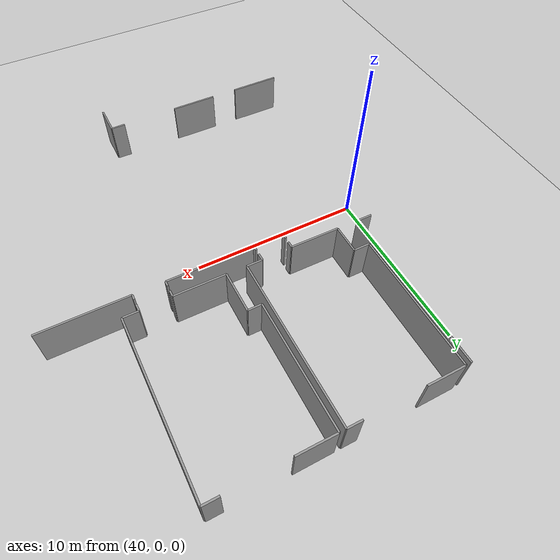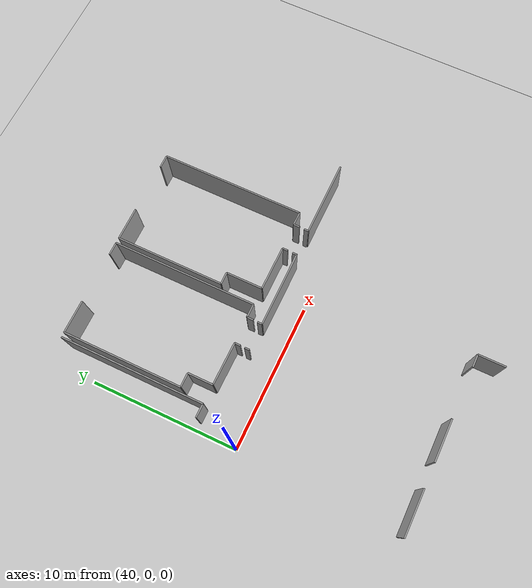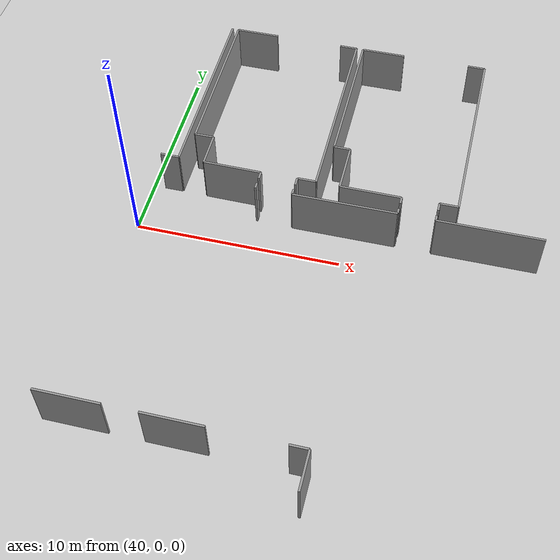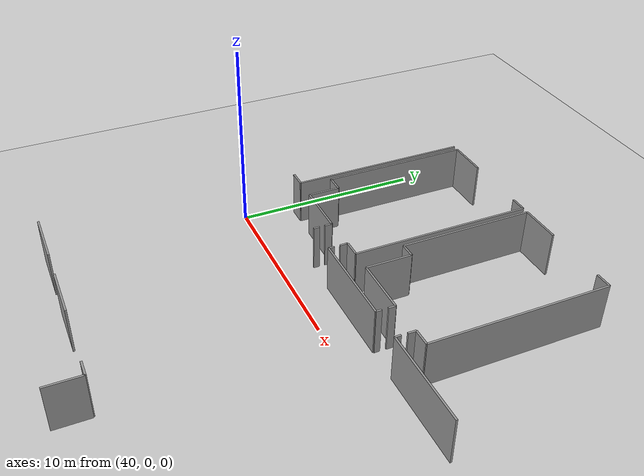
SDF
<sdf version="1.6">
 <world name="default">
  <model name="ground_plane">
   <static>1</static>
   <link name="link">
    <collision name="collision">
     <geometry><plane><normal>0 0 1</normal><size>100 100</size></plane></geometry>
     <surface><friction><ode><mu>100</mu><mu2>50</mu2></ode></friction></surface>
    </collision>
    <visual name="visual">
     <cast_shadows>0</cast_shadows>
     <geometry><plane><normal>0 0 1</normal><size>100 100</size></plane></geometry>
     <material>
      <script><uri>file://media/materials/scripts/gazebo.material</uri><name>Gazebo/Grey</name></script>
     </material>
    </visual>
   </link>
  </model>
  <model name="0510032198_A_40_1_106">
   <static>1</static>
   <link name="Wall_150">
    <collision name="Wall_150_Collision">
     <geometry><box><size>9.63523866394 0.1 2.5</size></box></geometry>
     <pose>4.81761933197 0 1.25 0 0 0</pose>
    </collision>
    <visual name="Wall_150_Visual">
     <pose>4.81761933197 0 1.25 0 0 0</pose>
     <geometry><box><size>9.63523866394 0.1 2.5</size></box></geometry>
     <material>
      <script><uri>file://media/materials/scripts/gazebo.material</uri><name>Gazebo/Grey</name></script>
      <ambient>1 1 1 1</ambient>
     </material>
    </visual>
    <pose>109.035307271 -0.307588712854 0 0 0 -1.57079632679</pose>
   </link>
   <link name="Wall_151">
    <collision name="Wall_151_Collision">
     <geometry><box><size>0.910188161456 0.1 2.5</size></box></geometry>
     <pose>0.455094080728 0 1.25 0 0 0</pose>
    </collision>
    <visual name="Wall_151_Visual">
     <pose>0.455094080728 0 1.25 0 0 0</pose>
     <geometry><box><size>0.910188161456 0.1 2.5</size></box></geometry>
     <material>
      <script><uri>file://media/materials/scripts/gazebo.material</uri><name>Gazebo/Grey</name></script>
      <ambient>1 1 1 1</ambient>
     </material>
    </visual>
    <pose>109.035307271 -9.94282737679 0 0 0 3.14159265359</pose>
   </link>
   <link name="Wall_155">
    <collision name="Wall_155_Collision">
     <geometry><box><size>1.68023987092 0.1 2.5</size></box></geometry>
     <pose>0.840119935458 0 1.25 0 0 0</pose>
    </collision>
    <visual name="Wall_155_Visual">
     <pose>0.840119935458 0 1.25 0 0 0</pose>
     <geometry><box><size>1.68023987092 0.1 2.5</size></box></geometry>
     <material>
      <script><uri>file://media/materials/scripts/gazebo.material</uri><name>Gazebo/Grey</name></script>
      <ambient>1 1 1 1</ambient>
     </material>
    </visual>
    <pose>110.3017444 -9.96658577799 0 0 0 1.57079632679</pose>
   </link>
   <link name="Wall_156">
    <collision name="Wall_156_Collision">
     <geometry><box><size>0.941442528809 0.1 2.5</size></box></geometry>
     <pose>0.470721264404 0 1.25 0 0 0</pose>
    </collision>
    <visual name="Wall_156_Visual">
     <pose>0.470721264404 0 1.25 0 0 0</pose>
     <geometry><box><size>0.941442528809 0.1 2.5</size></box></geometry>
     <material>
      <script><uri>file://media/materials/scripts/gazebo.material</uri><name>Gazebo/Grey</name></script>
      <ambient>1 1 1 1</ambient>
     </material>
    </visual>
    <pose>110.3017444 -8.28634590708 0 0 0 3.14159265359</pose>
   </link>
   <link name="Wall_157">
    <collision name="Wall_157_Collision">
     <geometry><box><size>7.96706856903 0.1 2.5</size></box></geometry>
     <pose>3.98353428452 0 1.25 0 0 0</pose>
    </collision>
    <visual name="Wall_157_Visual">
     <pose>3.98353428452 0 1.25 0 0 0</pose>
     <geometry><box><size>7.96706856903 0.1 2.5</size></box></geometry>
     <material>
      <script><uri>file://media/materials/scripts/gazebo.material</uri><name>Gazebo/Grey</name></script>
      <ambient>1 1 1 1</ambient>
     </material>
    </visual>
    <pose>109.360301871 -8.28634590708 0 0 0 1.57079632679</pose>
   </link>
   <link name="Wall_158">
    <collision name="Wall_158_Collision">
     <geometry><box><size>2.19796973662 0.1 2.5</size></box></geometry>
     <pose>1.09898486831 0 1.25 0 0 0</pose>
    </collision>
    <visual name="Wall_158_Visual">
     <pose>1.09898486831 0 1.25 0 0 0</pose>
     <geometry><box><size>2.19796973662 0.1 2.5</size></box></geometry>
     <material>
      <script><uri>file://media/materials/scripts/gazebo.material</uri><name>Gazebo/Grey</name></script>
      <ambient>1 1 1 1</ambient>
     </material>
    </visual>
    <pose>109.360301871 -0.319277338043 0 0 0 0.0</pose>
   </link>
   <link name="Wall_159">
    <collision name="Wall_159_Collision">
     <geometry><box><size>0.865212364533 0.1 2.5</size></box></geometry>
     <pose>0.432606182266 0 1.25 0 0 0</pose>
    </collision>
    <visual name="Wall_159_Visual">
     <pose>0.432606182266 0 1.25 0 0 0</pose>
     <geometry><box><size>0.865212364533 0.1 2.5</size></box></geometry>
     <material>
      <script><uri>file://media/materials/scripts/gazebo.material</uri><name>Gazebo/Grey</name></script>
      <ambient>1 1 1 1</ambient>
     </material>
    </visual>
    <pose>114.998793022 -0.319277338043 0 0 0 0.0</pose>
   </link>
   <link name="Wall_160">
    <collision name="Wall_160_Collision">
     <geometry><box><size>9.63320585956 0.1 2.5</size></box></geometry>
     <pose>4.81660292978 0 1.25 0 0 0</pose>
    </collision>
    <visual name="Wall_160_Visual">
     <pose>4.81660292978 0 1.25 0 0 0</pose>
     <geometry><box><size>9.63320585956 0.1 2.5</size></box></geometry>
     <material>
      <script><uri>file://media/materials/scripts/gazebo.material</uri><name>Gazebo/Grey</name></script>
      <ambient>1 1 1 1</ambient>
     </material>
    </visual>
    <pose>115.864005387 -0.319277338043 0 0 0 -1.57079632679</pose>
   </link>
   <link name="Wall_161">
    <collision name="Wall_161_Collision">
     <geometry><box><size>0.912220965836 0.1 2.5</size></box></geometry>
     <pose>0.456110482918 0 1.25 0 0 0</pose>
    </collision>
    <visual name="Wall_161_Visual">
     <pose>0.456110482918 0 1.25 0 0 0</pose>
     <geometry><box><size>0.912220965836 0.1 2.5</size></box></geometry>
     <material>
      <script><uri>file://media/materials/scripts/gazebo.material</uri><name>Gazebo/Grey</name></script>
      <ambient>1 1 1 1</ambient>
     </material>
    </visual>
    <pose>115.864005387 -9.9524831976 0 0 0 3.14159265359</pose>
   </link>
   <link name="Wall_162">
    <collision name="Wall_162_Collision">
     <geometry><box><size>0.423331512279 0.1 2.5</size></box></geometry>
     <pose>0.21166575614 0 1.25 0 0 0</pose>
    </collision>
    <visual name="Wall_162_Visual">
     <pose>0.21166575614 0 1.25 0 0 0</pose>
     <geometry><box><size>0.423331512279 0.1 2.5</size></box></geometry>
     <material>
      <script><uri>file://media/materials/scripts/gazebo.material</uri><name>Gazebo/Grey</name></script>
      <ambient>1 1 1 1</ambient>
     </material>
    </visual>
    <pose>114.951784421 -9.9524831976 0 0 0 -1.57079632679</pose>
   </link>
   <link name="Wall_163">
    <collision name="Wall_163_Collision">
     <geometry><box><size>0.382802474939 0.1 2.5</size></box></geometry>
     <pose>0.19140123747 0 1.25 0 0 0</pose>
    </collision>
    <visual name="Wall_163_Visual">
     <pose>0.19140123747 0 1.25 0 0 0</pose>
     <geometry><box><size>0.382802474939 0.1 2.5</size></box></geometry>
     <material>
      <script><uri>file://media/materials/scripts/gazebo.material</uri><name>Gazebo/Grey</name></script>
      <ambient>1 1 1 1</ambient>
     </material>
    </visual>
    <pose>113.162916566 -10.3758147099 0 0 0 1.57079632679</pose>
   </link>
   <link name="Wall_164">
    <collision name="Wall_164_Collision">
     <geometry><box><size>2.8612942037 0.1 2.5</size></box></geometry>
     <pose>1.43064710185 0 1.25 0 0 0</pose>
    </collision>
    <visual name="Wall_164_Visual">
     <pose>1.43064710185 0 1.25 0 0 0</pose>
     <geometry><box><size>2.8612942037 0.1 2.5</size></box></geometry>
     <material>
      <script><uri>file://media/materials/scripts/gazebo.material</uri><name>Gazebo/Grey</name></script>
      <ambient>1 1 1 1</ambient>
     </material>
    </visual>
    <pose>113.162916566 -9.99301223494 0 0 0 3.13235668176</pose>
   </link>
   <link name="Wall_165">
    <collision name="Wall_165_Collision">
     <geometry><box><size>2.43936525683 0.1 2.5</size></box></geometry>
     <pose>1.21968262842 0 1.25 0 0 0</pose>
    </collision>
    <visual name="Wall_165_Visual">
     <pose>1.21968262842 0 1.25 0 0 0</pose>
     <geometry><box><size>2.43936525683 0.1 2.5</size></box></geometry>
     <material>
      <script><uri>file://media/materials/scripts/gazebo.material</uri><name>Gazebo/Grey</name></script>
      <ambient>1 1 1 1</ambient>
     </material>
    </visual>
    <pose>117.020162878 -9.97713095072 0 0 0 1.57079632679</pose>
   </link>
   <link name="Wall_166">
    <collision name="Wall_166_Collision">
     <geometry><box><size>0.800416724898 0.1 2.5</size></box></geometry>
     <pose>0.400208362449 0 1.25 0 0 0</pose>
    </collision>
    <visual name="Wall_166_Visual">
     <pose>0.400208362449 0 1.25 0 0 0</pose>
     <geometry><box><size>0.800416724898 0.1 2.5</size></box></geometry>
     <material>
      <script><uri>file://media/materials/scripts/gazebo.material</uri><name>Gazebo/Grey</name></script>
      <ambient>1 1 1 1</ambient>
     </material>
    </visual>
    <pose>117.020162878 -7.53776569389 0 0 0 3.14159265359</pose>
   </link>
   <link name="Wall_167">
    <collision name="Wall_167_Collision">
     <geometry><box><size>7.21848835584 0.1 2.5</size></box></geometry>
     <pose>3.60924417792 0 1.25 0 0 0</pose>
    </collision>
    <visual name="Wall_167_Visual">
     <pose>3.60924417792 0 1.25 0 0 0</pose>
     <geometry><box><size>7.21848835584 0.1 2.5</size></box></geometry>
     <material>
      <script><uri>file://media/materials/scripts/gazebo.material</uri><name>Gazebo/Grey</name></script>
      <ambient>1 1 1 1</ambient>
     </material>
    </visual>
    <pose>116.219746154 -7.53776569389 0 0 0 1.57079632679</pose>
   </link>
   <link name="Wall_168">
    <collision name="Wall_168_Collision">
     <geometry><box><size>2.20559275305 0.1 2.5</size></box></geometry>
     <pose>1.10279637653 0 1.25 0 0 0</pose>
    </collision>
    <visual name="Wall_168_Visual">
     <pose>1.10279637653 0 1.25 0 0 0</pose>
     <geometry><box><size>2.20559275305 0.1 2.5</size></box></geometry>
     <material>
      <script><uri>file://media/materials/scripts/gazebo.material</uri><name>Gazebo/Grey</name></script>
      <ambient>1 1 1 1</ambient>
     </material>
    </visual>
    <pose>116.219746154 -0.319277338043 0 0 0 0.0</pose>
   </link>
   <link name="Wall_169">
    <collision name="Wall_169_Collision">
     <geometry><box><size>0.865212364533 0.1 2.5</size></box></geometry>
     <pose>0.432606182266 0 1.25 0 0 0</pose>
    </collision>
    <visual name="Wall_169_Visual">
     <pose>0.432606182266 0 1.25 0 0 0</pose>
     <geometry><box><size>0.865212364533 0.1 2.5</size></box></geometry>
     <material>
      <script><uri>file://media/materials/scripts/gazebo.material</uri><name>Gazebo/Grey</name></script>
      <ambient>1 1 1 1</ambient>
     </material>
    </visual>
    <pose>121.815040211 -0.319277338043 0 0 0 0.0</pose>
   </link>
   <link name="Wall_170">
    <collision name="Wall_170_Collision">
     <geometry><box><size>9.62355003875 0.1 2.5</size></box></geometry>
     <pose>4.81177501938 0 1.25 0 0 0</pose>
    </collision>
    <visual name="Wall_170_Visual">
     <pose>4.81177501938 0 1.25 0 0 0</pose>
     <geometry><box><size>9.62355003875 0.1 2.5</size></box></geometry>
     <material>
      <script><uri>file://media/materials/scripts/gazebo.material</uri><name>Gazebo/Grey</name></script>
      <ambient>1 1 1 1</ambient>
     </material>
    </visual>
    <pose>122.680252576 -0.319277338043 0 0 0 -1.57079632679</pose>
   </link>
   <link name="Wall_171">
    <collision name="Wall_171_Collision">
     <geometry><box><size>0.896974932981 0.1 2.5</size></box></geometry>
     <pose>0.44848746649 0 1.25 0 0 0</pose>
    </collision>
    <visual name="Wall_171_Visual">
     <pose>0.44848746649 0 1.25 0 0 0</pose>
     <geometry><box><size>0.896974932981 0.1 2.5</size></box></geometry>
     <material>
      <script><uri>file://media/materials/scripts/gazebo.material</uri><name>Gazebo/Grey</name></script>
      <ambient>1 1 1 1</ambient>
     </material>
    </visual>
    <pose>122.680252576 -9.94282737679 0 0 0 3.14159265359</pose>
   </link>
   <link name="Wall_172">
    <collision name="Wall_172_Collision">
     <geometry><box><size>0.417741300232 0.1 2.5</size></box></geometry>
     <pose>0.208870650116 0 1.25 0 0 0</pose>
    </collision>
    <visual name="Wall_172_Visual">
     <pose>0.208870650116 0 1.25 0 0 0</pose>
     <geometry><box><size>0.417741300232 0.1 2.5</size></box></geometry>
     <material>
      <script><uri>file://media/materials/scripts/gazebo.material</uri><name>Gazebo/Grey</name></script>
      <ambient>1 1 1 1</ambient>
     </material>
    </visual>
    <pose>121.783277643 -9.94282737679 0 0 0 -1.57079632679</pose>
   </link>
   <link name="Wall_173">
    <collision name="Wall_173_Collision">
     <geometry><box><size>0.367556442084 0.1 2.5</size></box></geometry>
     <pose>0.183778221042 0 1.25 0 0 0</pose>
    </collision>
    <visual name="Wall_173_Visual">
     <pose>0.183778221042 0 1.25 0 0 0</pose>
     <geometry><box><size>0.367556442084 0.1 2.5</size></box></geometry>
     <material>
      <script><uri>file://media/materials/scripts/gazebo.material</uri><name>Gazebo/Grey</name></script>
      <ambient>1 1 1 1</ambient>
     </material>
    </visual>
    <pose>119.995680291 -10.360568677 0 0 0 1.57079632679</pose>
   </link>
   <link name="Wall_174">
    <collision name="Wall_174_Collision">
     <geometry><box><size>2.97555979367 0.1 2.5</size></box></geometry>
     <pose>1.48777989684 0 1.25 0 0 0</pose>
    </collision>
    <visual name="Wall_174_Visual">
     <pose>1.48777989684 0 1.25 0 0 0</pose>
     <geometry><box><size>2.97555979367 0.1 2.5</size></box></geometry>
     <material>
      <script><uri>file://media/materials/scripts/gazebo.material</uri><name>Gazebo/Grey</name></script>
      <ambient>1 1 1 1</ambient>
     </material>
    </visual>
    <pose>119.995680291 -9.99301223494 0 0 0 3.13625538574</pose>
   </link>
   <link name="Wall_209">
    <collision name="Wall_209_Collision">
     <geometry><box><size>1.81999517209 0.1 2.5</size></box></geometry>
     <pose>0.909997586045 0 1.25 0 0 0</pose>
    </collision>
    <visual name="Wall_209_Visual">
     <pose>0.909997586045 0 1.25 0 0 0</pose>
     <geometry><box><size>1.81999517209 0.1 2.5</size></box></geometry>
     <material>
      <script><uri>file://media/materials/scripts/gazebo.material</uri><name>Gazebo/Grey</name></script>
      <ambient>1 1 1 1</ambient>
     </material>
    </visual>
    <pose>118.735341575 -25.3852799553 0 0 0 1.57079632679</pose>
   </link>
   <link name="Wall_210">
    <collision name="Wall_210_Collision">
     <geometry><box><size>0.851236834415 0.1 2.5</size></box></geometry>
     <pose>0.425618417208 0 1.25 0 0 0</pose>
    </collision>
    <visual name="Wall_210_Visual">
     <pose>0.425618417208 0 1.25 0 0 0</pose>
     <geometry><box><size>0.851236834415 0.1 2.5</size></box></geometry>
     <material>
      <script><uri>file://media/materials/scripts/gazebo.material</uri><name>Gazebo/Grey</name></script>
      <ambient>1 1 1 1</ambient>
     </material>
    </visual>
    <pose>118.735341575 -23.5652847832 0 0 0 3.14159265359</pose>
   </link>
   <link name="Wall_211">
    <collision name="Wall_211_Collision">
     <geometry><box><size>2.79256501798 0.1 2.5</size></box></geometry>
     <pose>1.39628250899 0 1.25 0 0 0</pose>
    </collision>
    <visual name="Wall_211_Visual">
     <pose>1.39628250899 0 1.25 0 0 0</pose>
     <geometry><box><size>2.79256501798 0.1 2.5</size></box></geometry>
     <material>
      <script><uri>file://media/materials/scripts/gazebo.material</uri><name>Gazebo/Grey</name></script>
      <ambient>1 1 1 1</ambient>
     </material>
    </visual>
    <pose>114.452476845 -23.5652847832 0 0 0 3.14159265359</pose>
   </link>
   <link name="Wall_212">
    <collision name="Wall_212_Collision">
     <geometry><box><size>3.01528414794 0.1 2.5</size></box></geometry>
     <pose>1.50764207397 0 1.25 0 0 0</pose>
    </collision>
    <visual name="Wall_212_Visual">
     <pose>1.50764207397 0 1.25 0 0 0</pose>
     <geometry><box><size>3.01528414794 0.1 2.5</size></box></geometry>
     <material>
      <script><uri>file://media/materials/scripts/gazebo.material</uri><name>Gazebo/Grey</name></script>
      <ambient>1 1 1 1</ambient>
     </material>
    </visual>
    <pose>110.056537372 -23.5652847832 0 0 0 3.14159265359</pose>
   </link>
   <link name="Wall_353">
    <collision name="Wall_353_Collision">
     <geometry><box><size>0.321564242971 0.1 2.5</size></box></geometry>
     <pose>0.160782121485 0 1.25 0 0 0</pose>
    </collision>
    <visual name="Wall_353_Visual">
     <pose>0.160782121485 0 1.25 0 0 0</pose>
     <geometry><box><size>0.321564242971 0.1 2.5</size></box></geometry>
     <material>
      <script><uri>file://media/materials/scripts/gazebo.material</uri><name>Gazebo/Grey</name></script>
      <ambient>1 1 1 1</ambient>
     </material>
    </visual>
    <pose>113.154023047 -10.9884511301 0 0 0 1.57079632679</pose>
   </link>
   <link name="Wall_354">
    <collision name="Wall_354_Collision">
     <geometry><box><size>0.313051874627 0.1 2.5</size></box></geometry>
     <pose>0.156525937313 0 1.25 0 0 0</pose>
    </collision>
    <visual name="Wall_354_Visual">
     <pose>0.156525937313 0 1.25 0 0 0</pose>
     <geometry><box><size>0.313051874627 0.1 2.5</size></box></geometry>
     <material>
      <script><uri>file://media/materials/scripts/gazebo.material</uri><name>Gazebo/Grey</name></script>
      <ambient>1 1 1 1</ambient>
     </material>
    </visual>
    <pose>114.940349896 -10.6668868871 0 0 0 -1.57079632679</pose>
   </link>
   <link name="Wall_355">
    <collision name="Wall_355_Collision">
     <geometry><box><size>5.04135486412 0.1 2.5</size></box></geometry>
     <pose>2.52067743206 0 1.25 0 0 0</pose>
    </collision>
    <visual name="Wall_355_Visual">
     <pose>2.52067743206 0 1.25 0 0 0</pose>
     <geometry><box><size>5.04135486412 0.1 2.5</size></box></geometry>
     <material>
      <script><uri>file://media/materials/scripts/gazebo.material</uri><name>Gazebo/Grey</name></script>
      <ambient>1 1 1 1</ambient>
     </material>
    </visual>
    <pose>114.940349896 -10.9799387618 0 0 0 0.0</pose>
   </link>
   <link name="Wall_356">
    <collision name="Wall_356_Collision">
     <geometry><box><size>0.30110914889 0.1 2.5</size></box></geometry>
     <pose>0.150554574445 0 1.25 0 0 0</pose>
    </collision>
    <visual name="Wall_356_Visual">
     <pose>0.150554574445 0 1.25 0 0 0</pose>
     <geometry><box><size>0.30110914889 0.1 2.5</size></box></geometry>
     <material>
      <script><uri>file://media/materials/scripts/gazebo.material</uri><name>Gazebo/Grey</name></script>
      <ambient>1 1 1 1</ambient>
     </material>
    </visual>
    <pose>119.981704761 -10.9799387618 0 0 0 1.57079632679</pose>
   </link>
   <link name="Wall_357">
    <collision name="Wall_357_Collision">
     <geometry><box><size>0.300855048343 0.1 2.5</size></box></geometry>
     <pose>0.150427524171 0 1.25 0 0 0</pose>
    </collision>
    <visual name="Wall_357_Visual">
     <pose>0.150427524171 0 1.25 0 0 0</pose>
     <geometry><box><size>0.300855048343 0.1 2.5</size></box></geometry>
     <material>
      <script><uri>file://media/materials/scripts/gazebo.material</uri><name>Gazebo/Grey</name></script>
      <ambient>1 1 1 1</ambient>
     </material>
    </visual>
    <pose>121.769302113 -10.6788296129 0 0 0 -1.57079632679</pose>
   </link>
   <link name="Wall_358">
    <collision name="Wall_358_Collision">
     <geometry><box><size>5.04516637233 0.1 2.5</size></box></geometry>
     <pose>2.52258318617 0 1.25 0 0 0</pose>
    </collision>
    <visual name="Wall_358_Visual">
     <pose>2.52258318617 0 1.25 0 0 0</pose>
     <geometry><box><size>5.04516637233 0.1 2.5</size></box></geometry>
     <material>
      <script><uri>file://media/materials/scripts/gazebo.material</uri><name>Gazebo/Grey</name></script>
      <ambient>1 1 1 1</ambient>
     </material>
    </visual>
    <pose>121.769302113 -10.9796846612 0 0 0 0.0</pose>
   </link>
   <pose>-67.6 12.6852799553 0 0 0 0</pose>
  </model>
 </world>
</sdf>
